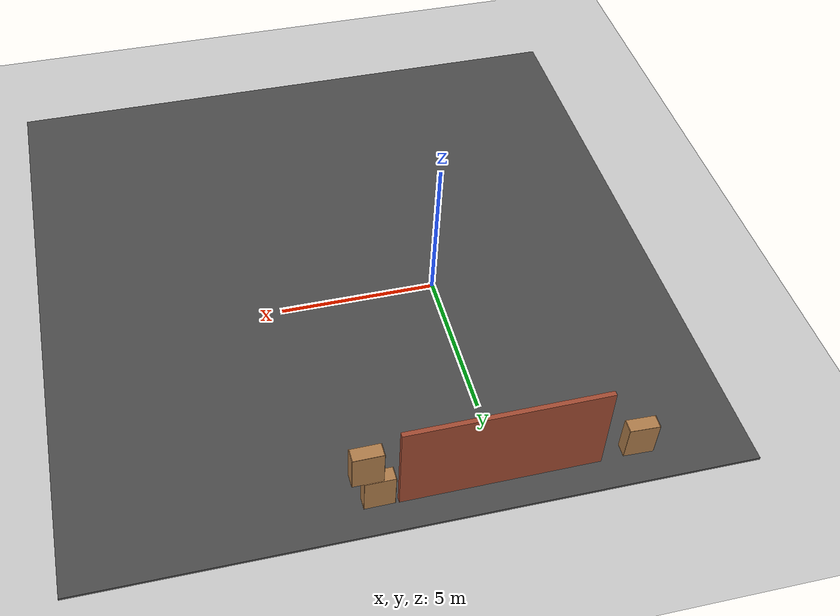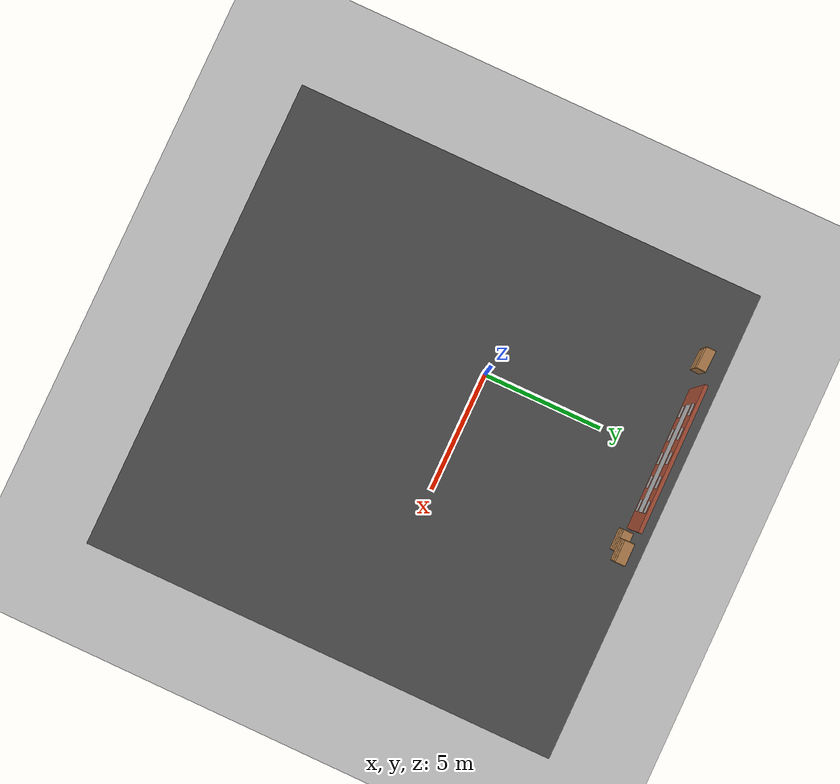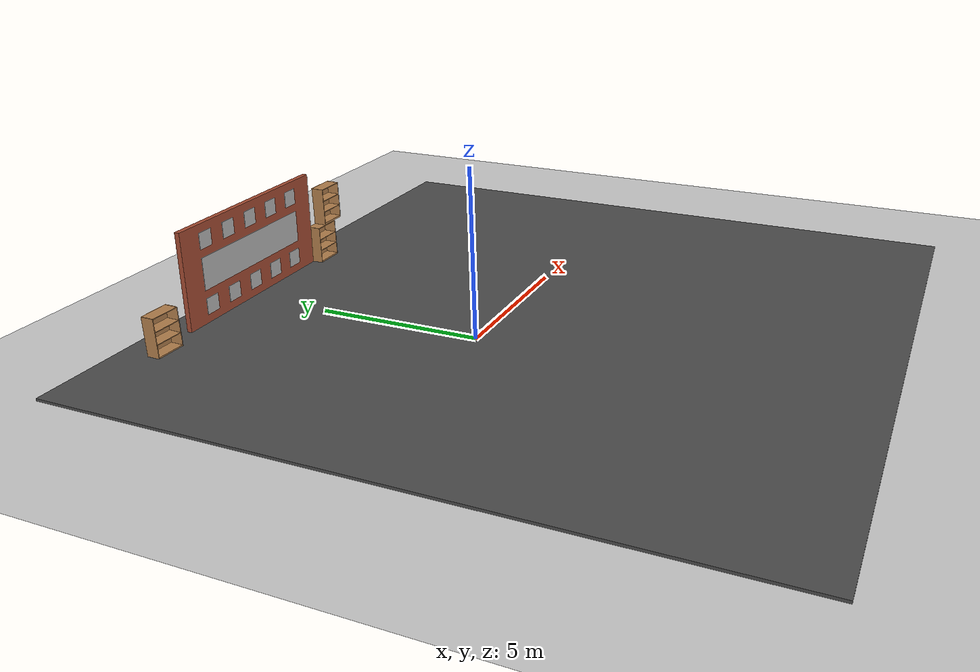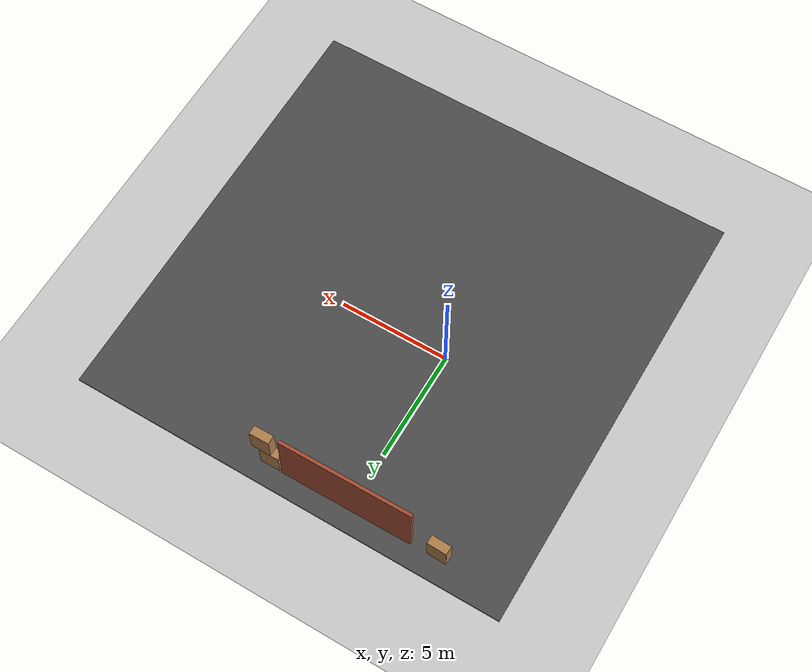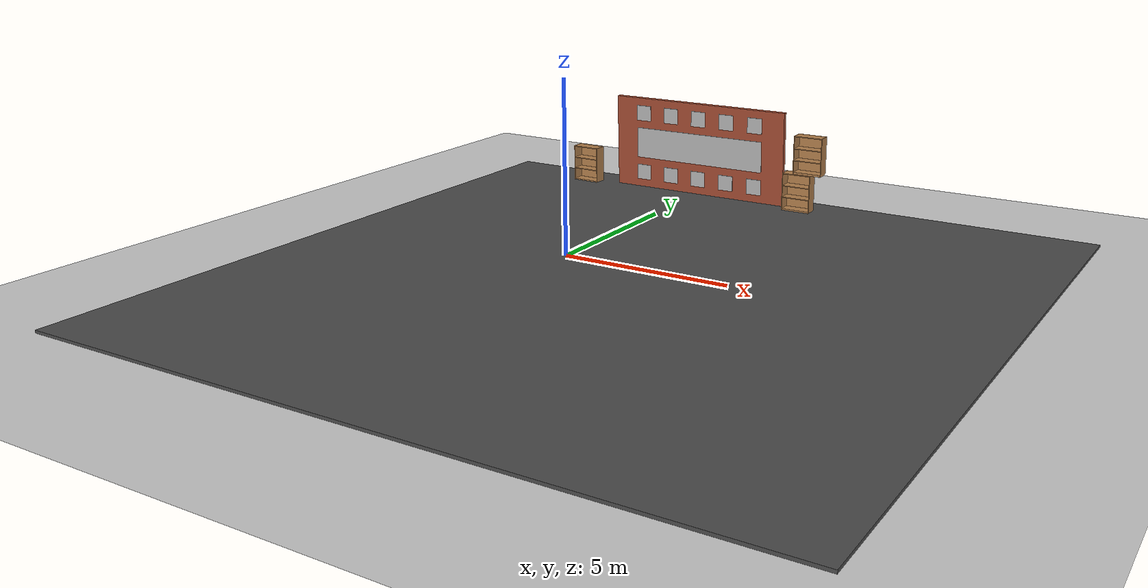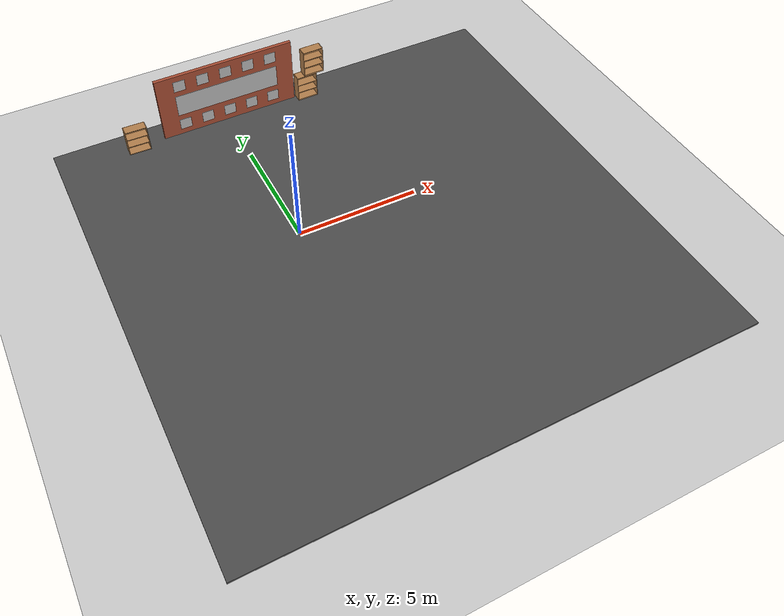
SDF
<sdf version="1.6">
 <world name="default">
  <model name="ground_plane">
   <static>1</static>
   <link name="link">
    <collision name="collision">
     <geometry><plane><normal>0 0 1</normal><size>100 100</size></plane></geometry>
     <surface>
      <contact><collide_bitmask>65535</collide_bitmask></contact>
      <friction><ode><mu>100</mu><mu2>50</mu2></ode></friction>
     </surface>
    </collision>
    <visual name="visual">
     <cast_shadows>0</cast_shadows>
     <geometry><plane><normal>0 0 1</normal><size>100 100</size></plane></geometry>
     <material>
      <script><uri>file://media/materials/scripts/gazebo.material</uri><name>Gazebo/Grey</name></script>
     </material>
    </visual>
   </link>
  </model>
  <model name="wall_with_num">
   <pose>0.139426 7.61579 1.58041 -0.028957 -0.000253 -3.13441</pose>
   <static>1</static>
   <link name="wall_link">
    <inertial><mass>1</mass></inertial>
    <collision name="my_collision"><geometry><box><size>6 0.15 3</size></box></geometry></collision>
    <visual name="my_visual">
     <geometry><box><size>6 0.15 3</size></box></geometry>
     <material>
      <script><uri>file://media/materials/scripts/gazebo.material</uri><name>Gazebo/Bricks</name></script>
      <ambient>1 1 1 1</ambient>
     </material>
    </visual>
   </link>
   <link name="logo">
    <pose>-0 0.07 -0 0 -0 0</pose>
    <collision name="collision"><geometry><box><size>0.5 0.01 0.5</size></box></geometry></collision>
    <visual name="visual">
     <cast_shadows>0</cast_shadows>
     <geometry><box><size>4.5 0.03 1</size></box></geometry>
     <material>
      <script>
       <uri>model://logo_ground/materials/scripts</uri>
       <uri>model://logo_ground/materials/textures</uri>
       <name>Cube/logo_ground</name>
      </script>
     </material>
    </visual>
   </link>
   <link name="num_0">
    <pose>2 0.07 1 0 -0 0</pose>
    <collision name="collision"><geometry><box><size>0.5 0.01 0.5</size></box></geometry></collision>
    <visual name="visual">
     <cast_shadows>0</cast_shadows>
     <geometry><box><size>0.5 0.03 0.5</size></box></geometry>
     <material>
      <script>
       <uri>model://wall_with_num/materials/scripts/numbers.material</uri>
       <uri>model://wall_with_num/materials/textures/</uri>
       <name>Numbers/0</name>
      </script>
     </material>
    </visual>
   </link>
   <link name="num_1">
    <pose>1 0.07 1 0 -0 0</pose>
    <collision name="collision"><geometry><box><size>0.5 0.01 0.5</size></box></geometry></collision>
    <visual name="visual">
     <cast_shadows>0</cast_shadows>
     <geometry><box><size>0.5 0.03 0.5</size></box></geometry>
     <material>
      <script>
       <uri>model://wall_with_num/materials/scripts/numbers.material</uri>
       <uri>model://wall_with_num/materials/textures/</uri>
       <name>Numbers/1</name>
      </script>
     </material>
    </visual>
   </link>
   <link name="num_2">
    <pose>0 0.07 1 0 -0 0</pose>
    <collision name="collision"><geometry><box><size>0.5 0.01 0.5</size></box></geometry></collision>
    <visual name="visual">
     <cast_shadows>0</cast_shadows>
     <geometry><box><size>0.5 0.03 0.5</size></box></geometry>
     <material>
      <script>
       <uri>model://wall_with_num/materials/scripts/numbers.material</uri>
       <uri>model://wall_with_num/materials/textures/</uri>
       <name>Numbers/2</name>
      </script>
     </material>
    </visual>
   </link>
   <link name="num_3">
    <pose>-1 0.07 1 0 -0 0</pose>
    <collision name="collision"><geometry><box><size>0.5 0.01 0.5</size></box></geometry></collision>
    <visual name="visual">
     <cast_shadows>0</cast_shadows>
     <geometry><box><size>0.5 0.03 0.5</size></box></geometry>
     <material>
      <script>
       <uri>model://wall_with_num/materials/scripts/numbers.material</uri>
       <uri>model://wall_with_num/materials/textures/</uri>
       <name>Numbers/3</name>
      </script>
     </material>
    </visual>
   </link>
   <link name="num_4">
    <pose>-2 0.07 1 0 -0 0</pose>
    <collision name="collision"><geometry><box><size>0.5 0.01 0.5</size></box></geometry></collision>
    <visual name="visual">
     <cast_shadows>0</cast_shadows>
     <geometry><box><size>0.5 0.03 0.5</size></box></geometry>
     <material>
      <script>
       <uri>model://wall_with_num/materials/scripts/numbers.material</uri>
       <uri>model://wall_with_num/materials/textures/</uri>
       <name>Numbers/4</name>
      </script>
     </material>
    </visual>
   </link>
   <link name="num_5">
    <pose>2 0.07 -1 0 -0 0</pose>
    <collision name="collision"><geometry><box><size>0.5 0.01 0.5</size></box></geometry></collision>
    <visual name="visual">
     <cast_shadows>0</cast_shadows>
     <geometry><box><size>0.5 0.03 0.5</size></box></geometry>
     <material>
      <script>
       <uri>model://wall_with_num/materials/scripts/numbers.material</uri>
       <uri>model://wall_with_num/materials/textures/</uri>
       <name>Numbers/5</name>
      </script>
     </material>
    </visual>
   </link>
   <link name="num_6">
    <pose>1 0.07 -1 0 -0 0</pose>
    <collision name="collision"><geometry><box><size>0.5 0.01 0.5</size></box></geometry></collision>
    <visual name="visual">
     <cast_shadows>0</cast_shadows>
     <geometry><box><size>0.5 0.03 0.5</size></box></geometry>
     <material>
      <script>
       <uri>model://wall_with_num/materials/scripts/numbers.material</uri>
       <uri>model://wall_with_num/materials/textures/</uri>
       <name>Numbers/6</name>
      </script>
     </material>
    </visual>
   </link>
   <link name="num_7">
    <pose>0 0.07 -1 0 -0 0</pose>
    <collision name="collision"><geometry><box><size>0.5 0.01 0.5</size></box></geometry></collision>
    <visual name="visual">
     <cast_shadows>0</cast_shadows>
     <geometry><box><size>0.5 0.03 0.5</size></box></geometry>
     <material>
      <script>
       <uri>model://wall_with_num/materials/scripts/numbers.material</uri>
       <uri>model://wall_with_num/materials/textures/</uri>
       <name>Numbers/7</name>
      </script>
     </material>
    </visual>
   </link>
   <link name="num_8">
    <pose>-1 0.07 -1 0 -0 0</pose>
    <collision name="collision"><geometry><box><size>0.5 0.01 0.5</size></box></geometry></collision>
    <visual name="visual">
     <cast_shadows>0</cast_shadows>
     <geometry><box><size>0.5 0.03 0.5</size></box></geometry>
     <material>
      <script>
       <uri>model://wall_with_num/materials/scripts/numbers.material</uri>
       <uri>model://wall_with_num/materials/textures/</uri>
       <name>Numbers/8</name>
      </script>
     </material>
    </visual>
   </link>
   <link name="num_9">
    <pose>-2 0.07 -1 0 -0 0</pose>
    <collision name="collision"><geometry><box><size>0.5 0.01 0.5</size></box></geometry></collision>
    <visual name="visual">
     <cast_shadows>0</cast_shadows>
     <geometry><box><size>0.5 0.03 0.5</size></box></geometry>
     <material>
      <script>
       <uri>model://wall_with_num/materials/scripts/numbers.material</uri>
       <uri>model://wall_with_num/materials/textures/</uri>
       <name>Numbers/9</name>
      </script>
     </material>
    </visual>
   </link>
  </model>
  <model name="bookshelf_clone_clone_1">
   <static>1</static>
   <link name="link">
    <inertial><mass>1</mass></inertial>
    <collision name="back">
     <pose>0 0.005 0.6 0 -0 0</pose>
     <geometry><box><size>0.9 0.01 1.2</size></box></geometry>
    </collision>
    <visual name="visual1">
     <pose>0 0.005 0.6 0 -0 0</pose>
     <geometry><box><size>0.9 0.01 1.2</size></box></geometry>
     <material>
      <script><uri>file://media/materials/scripts/gazebo.material</uri><name>Gazebo/Wood</name></script>
     </material>
    </visual>
    <collision name="left_side">
     <pose>0.45 -0.195 0.6 0 -0 0</pose>
     <geometry><box><size>0.02 0.4 1.2</size></box></geometry>
    </collision>
    <visual name="visual2">
     <pose>0.45 -0.195 0.6 0 -0 0</pose>
     <geometry><box><size>0.02 0.4 1.2</size></box></geometry>
     <material>
      <script><uri>file://media/materials/scripts/gazebo.material</uri><name>Gazebo/Wood</name></script>
     </material>
    </visual>
    <collision name="right_side">
     <pose>-0.45 -0.195 0.6 0 -0 0</pose>
     <geometry><box><size>0.02 0.4 1.2</size></box></geometry>
    </collision>
    <visual name="visual3">
     <pose>-0.45 -0.195 0.6 0 -0 0</pose>
     <geometry><box><size>0.02 0.4 1.2</size></box></geometry>
     <material>
      <script><uri>file://media/materials/scripts/gazebo.material</uri><name>Gazebo/Wood</name></script>
     </material>
    </visual>
    <collision name="bottom">
     <pose>0 -0.195 0.03 0 -0 0</pose>
     <geometry><box><size>0.88 0.4 0.06</size></box></geometry>
    </collision>
    <visual name="visual4">
     <pose>0 -0.195 0.03 0 -0 0</pose>
     <geometry><box><size>0.88 0.4 0.06</size></box></geometry>
     <material>
      <script><uri>file://media/materials/scripts/gazebo.material</uri><name>Gazebo/Wood</name></script>
     </material>
    </visual>
    <collision name="top">
     <pose>0 -0.195 1.19 0 -0 0</pose>
     <geometry><box><size>0.88 0.4 0.02</size></box></geometry>
    </collision>
    <visual name="visual5">
     <pose>0 -0.195 1.19 0 -0 0</pose>
     <geometry><box><size>0.88 0.4 0.02</size></box></geometry>
     <material>
      <script><uri>file://media/materials/scripts/gazebo.material</uri><name>Gazebo/Wood</name></script>
     </material>
    </visual>
    <collision name="low_shelf">
     <pose>0 -0.195 0.43 0 -0 0</pose>
     <geometry><box><size>0.88 0.4 0.02</size></box></geometry>
    </collision>
    <visual name="visual6">
     <pose>0 -0.195 0.43 0 -0 0</pose>
     <geometry><box><size>0.88 0.4 0.02</size></box></geometry>
     <material>
      <script><uri>file://media/materials/scripts/gazebo.material</uri><name>Gazebo/Wood</name></script>
     </material>
    </visual>
    <collision name="high_shelf">
     <pose>0 -0.195 0.8 0 -0 0</pose>
     <geometry><box><size>0.88 0.4 0.02</size></box></geometry>
    </collision>
    <visual name="visual7">
     <pose>0 -0.195 0.8 0 -0 0</pose>
     <geometry><box><size>0.88 0.4 0.02</size></box></geometry>
     <material>
      <script><uri>file://media/materials/scripts/gazebo.material</uri><name>Gazebo/Wood</name></script>
     </material>
    </visual>
   </link>
   <pose>-4.0173 7.67055 0.027497 0 0 -0.028777</pose>
  </model>
  <model name="asphalt_plane">
   <static>1</static>
   <link name="link">
    <collision name="collision"><geometry><box><size>20 20 0.1</size></box></geometry></collision>
    <visual name="visual">
     <cast_shadows>0</cast_shadows>
     <geometry><box><size>20 20 0.1</size></box></geometry>
     <material>
      <script>
       <uri>model://asphalt_plane/materials/scripts</uri>
       <uri>model://asphalt_plane/materials/textures</uri>
       <name>vrc/asphalt</name>
      </script>
     </material>
    </visual>
   </link>
   <pose>2.60888 -1.39738 0 0 -0 0</pose>
  </model>
  <model name="bookshelf_clone_clone_clone_clone_3">
   <static>1</static>
   <link name="link">
    <inertial><mass>1</mass></inertial>
    <collision name="back">
     <pose>0 0.005 0.6 0 -0 0</pose>
     <geometry><box><size>0.9 0.01 1.2</size></box></geometry>
    </collision>
    <visual name="visual1">
     <pose>0 0.005 0.6 0 -0 0</pose>
     <geometry><box><size>0.9 0.01 1.2</size></box></geometry>
     <material>
      <script><uri>file://media/materials/scripts/gazebo.material</uri><name>Gazebo/Wood</name></script>
     </material>
    </visual>
    <collision name="left_side">
     <pose>0.45 -0.195 0.6 0 -0 0</pose>
     <geometry><box><size>0.02 0.4 1.2</size></box></geometry>
    </collision>
    <visual name="visual2">
     <pose>0.45 -0.195 0.6 0 -0 0</pose>
     <geometry><box><size>0.02 0.4 1.2</size></box></geometry>
     <material>
      <script><uri>file://media/materials/scripts/gazebo.material</uri><name>Gazebo/Wood</name></script>
     </material>
    </visual>
    <collision name="right_side">
     <pose>-0.45 -0.195 0.6 0 -0 0</pose>
     <geometry><box><size>0.02 0.4 1.2</size></box></geometry>
    </collision>
    <visual name="visual3">
     <pose>-0.45 -0.195 0.6 0 -0 0</pose>
     <geometry><box><size>0.02 0.4 1.2</size></box></geometry>
     <material>
      <script><uri>file://media/materials/scripts/gazebo.material</uri><name>Gazebo/Wood</name></script>
     </material>
    </visual>
    <collision name="bottom">
     <pose>0 -0.195 0.03 0 -0 0</pose>
     <geometry><box><size>0.88 0.4 0.06</size></box></geometry>
    </collision>
    <visual name="visual4">
     <pose>0 -0.195 0.03 0 -0 0</pose>
     <geometry><box><size>0.88 0.4 0.06</size></box></geometry>
     <material>
      <script><uri>file://media/materials/scripts/gazebo.material</uri><name>Gazebo/Wood</name></script>
     </material>
    </visual>
    <collision name="top">
     <pose>0 -0.195 1.19 0 -0 0</pose>
     <geometry><box><size>0.88 0.4 0.02</size></box></geometry>
    </collision>
    <visual name="visual5">
     <pose>0 -0.195 1.19 0 -0 0</pose>
     <geometry><box><size>0.88 0.4 0.02</size></box></geometry>
     <material>
      <script><uri>file://media/materials/scripts/gazebo.material</uri><name>Gazebo/Wood</name></script>
     </material>
    </visual>
    <collision name="low_shelf">
     <pose>0 -0.195 0.43 0 -0 0</pose>
     <geometry><box><size>0.88 0.4 0.02</size></box></geometry>
    </collision>
    <visual name="visual6">
     <pose>0 -0.195 0.43 0 -0 0</pose>
     <geometry><box><size>0.88 0.4 0.02</size></box></geometry>
     <material>
      <script><uri>file://media/materials/scripts/gazebo.material</uri><name>Gazebo/Wood</name></script>
     </material>
    </visual>
    <collision name="high_shelf">
     <pose>0 -0.195 0.8 0 -0 0</pose>
     <geometry><box><size>0.88 0.4 0.02</size></box></geometry>
    </collision>
    <visual name="visual7">
     <pose>0 -0.195 0.8 0 -0 0</pose>
     <geometry><box><size>0.88 0.4 0.02</size></box></geometry>
     <material>
      <script><uri>file://media/materials/scripts/gazebo.material</uri><name>Gazebo/Wood</name></script>
     </material>
    </visual>
   </link>
   <pose>3.69142 7.72235 0.037852 0 -0 0.010513</pose>
  </model>
  <model name="bookshelf_clone_clone_clone_clone_2_clone">
   <static>1</static>
   <link name="link">
    <inertial><mass>1</mass></inertial>
    <collision name="back">
     <pose>0 0.005 0.6 0 -0 0</pose>
     <geometry><box><size>0.9 0.01 1.2</size></box></geometry>
    </collision>
    <visual name="visual1">
     <pose>0 0.005 0.6 0 -0 0</pose>
     <geometry><box><size>0.9 0.01 1.2</size></box></geometry>
     <material>
      <script><uri>file://media/materials/scripts/gazebo.material</uri><name>Gazebo/Wood</name></script>
     </material>
    </visual>
    <collision name="left_side">
     <pose>0.45 -0.195 0.6 0 -0 0</pose>
     <geometry><box><size>0.02 0.4 1.2</size></box></geometry>
    </collision>
    <visual name="visual2">
     <pose>0.45 -0.195 0.6 0 -0 0</pose>
     <geometry><box><size>0.02 0.4 1.2</size></box></geometry>
     <material>
      <script><uri>file://media/materials/scripts/gazebo.material</uri><name>Gazebo/Wood</name></script>
     </material>
    </visual>
    <collision name="right_side">
     <pose>-0.45 -0.195 0.6 0 -0 0</pose>
     <geometry><box><size>0.02 0.4 1.2</size></box></geometry>
    </collision>
    <visual name="visual3">
     <pose>-0.45 -0.195 0.6 0 -0 0</pose>
     <geometry><box><size>0.02 0.4 1.2</size></box></geometry>
     <material>
      <script><uri>file://media/materials/scripts/gazebo.material</uri><name>Gazebo/Wood</name></script>
     </material>
    </visual>
    <collision name="bottom">
     <pose>0 -0.195 0.03 0 -0 0</pose>
     <geometry><box><size>0.88 0.4 0.06</size></box></geometry>
    </collision>
    <visual name="visual4">
     <pose>0 -0.195 0.03 0 -0 0</pose>
     <geometry><box><size>0.88 0.4 0.06</size></box></geometry>
     <material>
      <script><uri>file://media/materials/scripts/gazebo.material</uri><name>Gazebo/Wood</name></script>
     </material>
    </visual>
    <collision name="top">
     <pose>0 -0.195 1.19 0 -0 0</pose>
     <geometry><box><size>0.88 0.4 0.02</size></box></geometry>
    </collision>
    <visual name="visual5">
     <pose>0 -0.195 1.19 0 -0 0</pose>
     <geometry><box><size>0.88 0.4 0.02</size></box></geometry>
     <material>
      <script><uri>file://media/materials/scripts/gazebo.material</uri><name>Gazebo/Wood</name></script>
     </material>
    </visual>
    <collision name="low_shelf">
     <pose>0 -0.195 0.43 0 -0 0</pose>
     <geometry><box><size>0.88 0.4 0.02</size></box></geometry>
    </collision>
    <visual name="visual6">
     <pose>0 -0.195 0.43 0 -0 0</pose>
     <geometry><box><size>0.88 0.4 0.02</size></box></geometry>
     <material>
      <script><uri>file://media/materials/scripts/gazebo.material</uri><name>Gazebo/Wood</name></script>
     </material>
    </visual>
    <collision name="high_shelf">
     <pose>0 -0.195 0.8 0 -0 0</pose>
     <geometry><box><size>0.88 0.4 0.02</size></box></geometry>
    </collision>
    <visual name="visual7">
     <pose>0 -0.195 0.8 0 -0 0</pose>
     <geometry><box><size>0.88 0.4 0.02</size></box></geometry>
     <material>
      <script><uri>file://media/materials/scripts/gazebo.material</uri><name>Gazebo/Wood</name></script>
     </material>
    </visual>
   </link>
   <pose>4.04114 7.71089 1.25701 0 -0 0.010513</pose>
  </model>
 </world>
</sdf>
